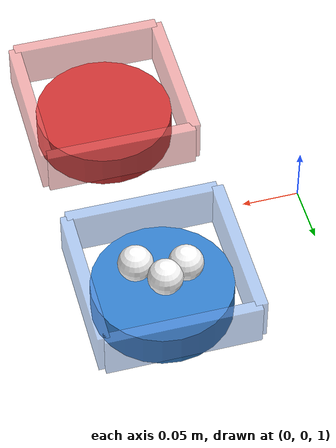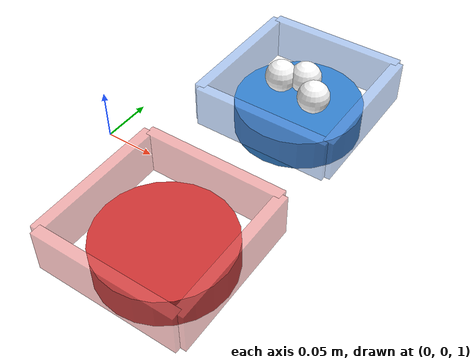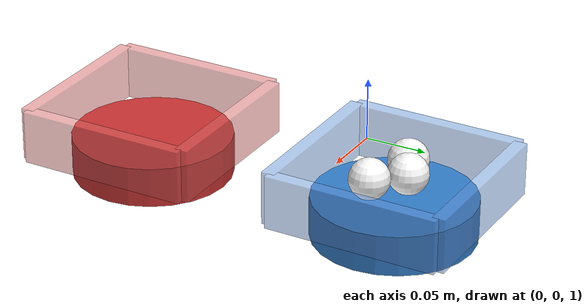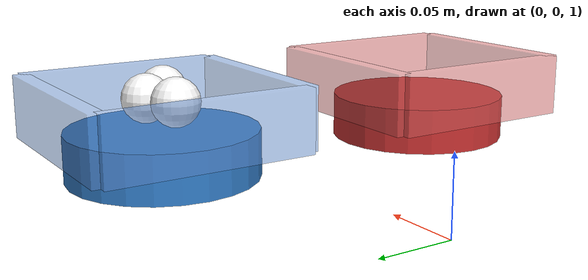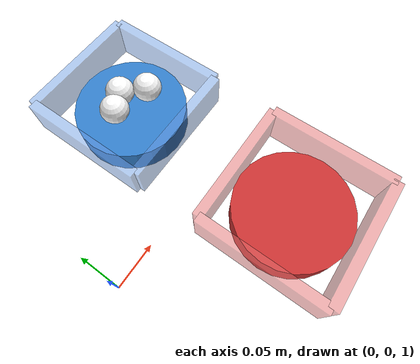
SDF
<sdf version="1.7">
 <world name="pick_and_place_balls">
  <physics name="1ms" type="ignored">
   <max_step_size>0.001</max_step_size>
   <real_time_factor>1.0</real_time_factor>
  </physics>
  <plugin filename="gz-sim-physics-system" name="gz::sim::systems::Physics"/>
  <plugin filename="gz-sim-user-commands-system" name="gz::sim::systems::UserCommands"/>
  <plugin filename="gz-sim-scene-broadcaster-system" name="gz::sim::systems::SceneBroadcaster"/>
  <plugin filename="gz-sim-sensors-system" name="gz::sim::systems::Sensors">
   <render_engine>ogre2</render_engine>
  </plugin>
  <include><uri>https://fuel.gazebosim.org/1.0/OpenRobotics/models/Ground Plane</uri></include>
  <include><uri>https://fuel.gazebosim.org/1.0/OpenRobotics/models/Sun</uri></include>
  <model name="bowl_with_balls">
   <pose>0.15 0.10 1.03 0 0 0</pose>
   <static>true</static>
   <link name="bowl_link">
    <visual name="bowl_visual">
     <geometry><cylinder><radius>0.06</radius><length>0.03</length></cylinder></geometry>
     <material><ambient>0.2 0.5 0.8 1</ambient><diffuse>0.2 0.5 0.8 1</diffuse></material>
    </visual>
    <collision name="bowl_collision">
     <geometry><cylinder><radius>0.06</radius><length>0.03</length></cylinder></geometry>
    </collision>
   </link>
  </model>
  <model name="empty_bowl">
   <pose>0.15 -0.10 1.03 0 0 0</pose>
   <static>true</static>
   <link name="bowl_link">
    <visual name="bowl_visual">
     <geometry><cylinder><radius>0.06</radius><length>0.03</length></cylinder></geometry>
     <material><ambient>0.8 0.2 0.2 1</ambient><diffuse>0.8 0.2 0.2 1</diffuse></material>
    </visual>
    <collision name="bowl_collision">
     <geometry><cylinder><radius>0.06</radius><length>0.03</length></cylinder></geometry>
    </collision>
   </link>
  </model>
  <model name="ball_0">
   <pose>0.15 0.11 1.065 0 0 0</pose>
   <link name="ball_link">
    <inertial>
     <mass>0.005</mass>
     <inertia><ixx>0.00001</ixx><iyy>0.00001</iyy><izz>0.00001</izz></inertia>
    </inertial>
    <visual name="ball_visual">
     <geometry><sphere><radius>0.015</radius></sphere></geometry>
     <material><ambient>1 1 1 1</ambient><diffuse>1 1 1 1</diffuse><specular>0.5 0.5 0.5 1</specular></material>
    </visual>
    <collision name="ball_collision">
     <geometry><sphere><radius>0.015</radius></sphere></geometry>
     <surface>
      <friction><ode><mu>0.8</mu><mu2>0.8</mu2></ode></friction>
      <bounce><restitution_coefficient>0.3</restitution_coefficient></bounce>
     </surface>
    </collision>
   </link>
  </model>
  <model name="ball_1">
   <pose>0.17 0.09 1.065 0 0 0</pose>
   <link name="ball_link">
    <inertial>
     <mass>0.005</mass>
     <inertia><ixx>0.00001</ixx><iyy>0.00001</iyy><izz>0.00001</izz></inertia>
    </inertial>
    <visual name="ball_visual">
     <geometry><sphere><radius>0.015</radius></sphere></geometry>
     <material><ambient>1 1 1 1</ambient><diffuse>1 1 1 1</diffuse><specular>0.5 0.5 0.5 1</specular></material>
    </visual>
    <collision name="ball_collision">
     <geometry><sphere><radius>0.015</radius></sphere></geometry>
     <surface>
      <friction><ode><mu>0.8</mu><mu2>0.8</mu2></ode></friction>
      <bounce><restitution_coefficient>0.3</restitution_coefficient></bounce>
     </surface>
    </collision>
   </link>
  </model>
  <model name="ball_2">
   <pose>0.13 0.10 1.065 0 0 0</pose>
   <link name="ball_link">
    <inertial>
     <mass>0.005</mass>
     <inertia><ixx>0.00001</ixx><iyy>0.00001</iyy><izz>0.00001</izz></inertia>
    </inertial>
    <visual name="ball_visual">
     <geometry><sphere><radius>0.015</radius></sphere></geometry>
     <material><ambient>1 1 1 1</ambient><diffuse>1 1 1 1</diffuse><specular>0.5 0.5 0.5 1</specular></material>
    </visual>
    <collision name="ball_collision">
     <geometry><sphere><radius>0.015</radius></sphere></geometry>
     <surface>
      <friction><ode><mu>0.8</mu><mu2>0.8</mu2></ode></friction>
      <bounce><restitution_coefficient>0.3</restitution_coefficient></bounce>
     </surface>
    </collision>
   </link>
  </model>
  <model name="bowl_1_ring_barrier">
   <pose>0.15 0.10 1.055 0 0 0</pose>
   <static>true</static>
   <link name="wall_north">
    <pose>0.065 0 0 0 0 0</pose>
    <collision name="collision"><geometry><box><size>0.01 0.13 0.04</size></box></geometry></collision>
    <visual name="visual">
     <geometry><box><size>0.01 0.13 0.04</size></box></geometry>
     <material>
      <ambient>0.4 0.6 0.9 0.5</ambient>
      <diffuse>0.4 0.6 0.9 0.5</diffuse>
      <transparency>0.5</transparency>
     </material>
    </visual>
   </link>
   <link name="wall_south">
    <pose>-0.065 0 0 0 0 0</pose>
    <collision name="collision"><geometry><box><size>0.01 0.13 0.04</size></box></geometry></collision>
    <visual name="visual">
     <geometry><box><size>0.01 0.13 0.04</size></box></geometry>
     <material>
      <ambient>0.4 0.6 0.9 0.5</ambient>
      <diffuse>0.4 0.6 0.9 0.5</diffuse>
      <transparency>0.5</transparency>
     </material>
    </visual>
   </link>
   <link name="wall_east">
    <pose>0 0.065 0 0 0 0</pose>
    <collision name="collision"><geometry><box><size>0.13 0.01 0.04</size></box></geometry></collision>
    <visual name="visual">
     <geometry><box><size>0.13 0.01 0.04</size></box></geometry>
     <material>
      <ambient>0.4 0.6 0.9 0.5</ambient>
      <diffuse>0.4 0.6 0.9 0.5</diffuse>
      <transparency>0.5</transparency>
     </material>
    </visual>
   </link>
   <link name="wall_west">
    <pose>0 -0.065 0 0 0 0</pose>
    <collision name="collision"><geometry><box><size>0.13 0.01 0.04</size></box></geometry></collision>
    <visual name="visual">
     <geometry><box><size>0.13 0.01 0.04</size></box></geometry>
     <material>
      <ambient>0.4 0.6 0.9 0.5</ambient>
      <diffuse>0.4 0.6 0.9 0.5</diffuse>
      <transparency>0.5</transparency>
     </material>
    </visual>
   </link>
  </model>
  <model name="bowl_2_ring_barrier">
   <pose>0.15 -0.10 1.055 0 0 0</pose>
   <static>true</static>
   <link name="wall_north">
    <pose>0.065 0 0 0 0 0</pose>
    <collision name="collision"><geometry><box><size>0.01 0.13 0.04</size></box></geometry></collision>
    <visual name="visual">
     <geometry><box><size>0.01 0.13 0.04</size></box></geometry>
     <material>
      <ambient>0.9 0.4 0.4 0.5</ambient>
      <diffuse>0.9 0.4 0.4 0.5</diffuse>
      <transparency>0.5</transparency>
     </material>
    </visual>
   </link>
   <link name="wall_south">
    <pose>-0.065 0 0 0 0 0</pose>
    <collision name="collision"><geometry><box><size>0.01 0.13 0.04</size></box></geometry></collision>
    <visual name="visual">
     <geometry><box><size>0.01 0.13 0.04</size></box></geometry>
     <material>
      <ambient>0.9 0.4 0.4 0.5</ambient>
      <diffuse>0.9 0.4 0.4 0.5</diffuse>
      <transparency>0.5</transparency>
     </material>
    </visual>
   </link>
   <link name="wall_east">
    <pose>0 0.065 0 0 0 0</pose>
    <collision name="collision"><geometry><box><size>0.13 0.01 0.04</size></box></geometry></collision>
    <visual name="visual">
     <geometry><box><size>0.13 0.01 0.04</size></box></geometry>
     <material>
      <ambient>0.9 0.4 0.4 0.5</ambient>
      <diffuse>0.9 0.4 0.4 0.5</diffuse>
      <transparency>0.5</transparency>
     </material>
    </visual>
   </link>
   <link name="wall_west">
    <pose>0 -0.065 0 0 0 0</pose>
    <collision name="collision"><geometry><box><size>0.13 0.01 0.04</size></box></geometry></collision>
    <visual name="visual">
     <geometry><box><size>0.13 0.01 0.04</size></box></geometry>
     <material>
      <ambient>0.9 0.4 0.4 0.5</ambient>
      <diffuse>0.9 0.4 0.4 0.5</diffuse>
      <transparency>0.5</transparency>
     </material>
    </visual>
   </link>
  </model>
  <gravity>0 0 -9.8</gravity>
  <magnetic_field>6e-06 2.3e-05 -4.2e-05</magnetic_field>
  <atmosphere type="adiabatic"/>
  <scene><ambient>0.6 0.6 0.6 1</ambient><background>0.7 0.7 0.7 1</background><shadows>1</shadows></scene>
 </world>
</sdf>
